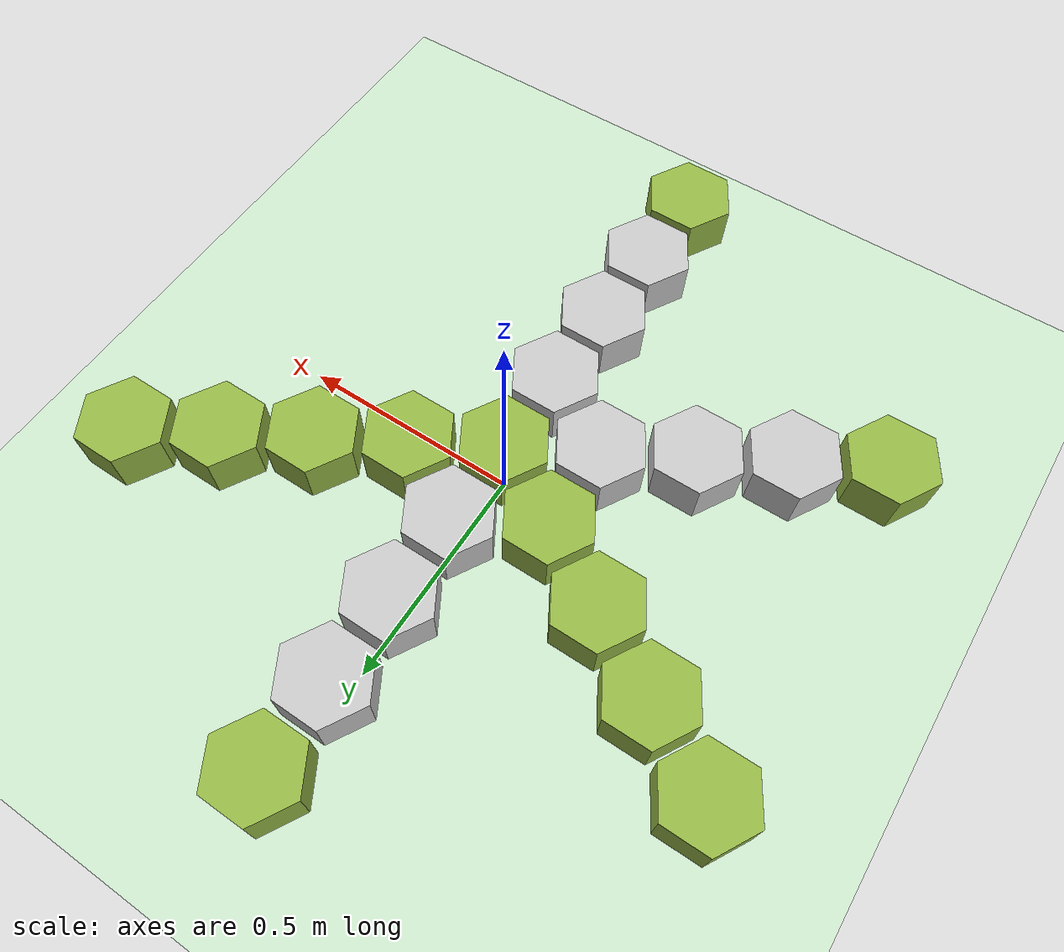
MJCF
<mujoco model="hinge_chain">
  <compiler eulerseq="zyx" meshdir="parts" texturedir="assets" autolimits="true"/>
  <option>
    <flag filterparent="disable"/>
  </option>
  <default>
    <joint range="-20 20"/>
  </default>
  <asset>
    <texture type="skybox" builtin="gradient" rgb1="0.3 0.5 0.7" rgb2="0 0 0" width="512" height="512"/>
    <texture name="texgeom" type="cube" builtin="flat" mark="cross" width="127" height="1278" rgb1="0.8 0.6 0.4" rgb2="0.8 0.6 0.4" markrgb="1 1 1" random="0.01"/>
    <texture name="texplane" type="2d" builtin="checker" rgb1=".2 .3 .4" rgb2=".1 0.15 0.2" width="512" height="512" mark="cross" markrgb=".8 .8 .8"/>
    <material name="matplane" reflectance="0.3" texture="texplane" texrepeat="1 1" texuniform="true"/>
    <material name="matgeom" texture="texgeom" texuniform="true" rgba="0.8 0.6 .4 1"/>
    <mesh file="hex-q.obj" name="hex" scale="1 1 1"/>
  </asset>
  <worldbody>
    <light cutoff="100" diffuse="1 1 1" dir="-0 0 -1.3" directional="true" exponent="1" pos="0 0 1.3" specular=".8 .8 .8"/>
    <light mode="targetbodycom" target="box0" pos="3 0 4" cutoff="100" diffuse="1 1 1" specular=".8 .8 .8"/>
    <geom name="floor" pos="0 0 0" rgba="0.8 0.9 0.8 1" size="40 40 40" type="plane" material="matplane" conaffinity="1" condim="6" friction="0.4 .0 .0" priority="10"/>
    <body name="box0" pos="0 0 0.1">
      <joint type="free"/>
      <geom name="box0" type="mesh" mesh="hex" rgba="0.5843137254901961 0.7176470588235294 0.27450980392156865 1" mass="1"/>
      <body name="box1" pos="0.16500000000000004 0.09526279441628827 0">
        <joint name="hinge1" type="hinge" axis="0 0 1" pos="-0.08250000000000002 -0.04763139720814413 0"/>
        <geom name="box1" type="mesh" mesh="hex" rgba="0.5843137254901961 0.7176470588235294 0.27450980392156865 1" mass="1"/>
        <body name="box2" pos="0.16500000000000004 0.09526279441628827 0">
          <joint name="hinge2" type="hinge" axis="0 0 1" pos="-0.08250000000000002 -0.04763139720814413 0"/>
          <geom name="box2" type="mesh" mesh="hex" rgba="0.5843137254901961 0.7176470588235294 0.27450980392156865 1" mass="1"/>
          <body name="box3" pos="0.16500000000000004 0.09526279441628827 0">
            <joint name="hinge3" type="hinge" axis="0 0 1" pos="-0.08250000000000002 -0.04763139720814413 0"/>
            <geom name="box3" type="mesh" mesh="hex" rgba="0.5843137254901961 0.7176470588235294 0.27450980392156865 1" mass="1"/>
            <body name="box4" pos="0.16500000000000004 0.09526279441628827 0">
              <joint name="hinge4" type="hinge" axis="0 0 1" pos="-0.08250000000000002 -0.04763139720814413 0"/>
              <geom name="box4" type="mesh" mesh="hex" rgba="0.5843137254901961 0.7176470588235294 0.27450980392156865 1" mass="1"/>
            </body>
          </body>
        </body>
      </body>
      <body name="box5" pos="0.0 0.19052558883257653 0">
        <joint name="hinge5" type="hinge" axis="0 0 1" pos="-0.0 -0.09526279441628827 0"/>
        <geom name="box5" type="mesh" mesh="hex" rgba="0.7803921568627451 0.7803921568627451 0.7803921568627451 1" mass="1"/>
        <body name="box6" pos="0.0 0.19052558883257653 0">
          <joint name="hinge6" type="hinge" axis="0 0 1" pos="-0.0 -0.09526279441628827 0"/>
          <geom name="box6" type="mesh" mesh="hex" rgba="0.7803921568627451 0.7803921568627451 0.7803921568627451 1" mass="1"/>
          <body name="box7" pos="0.0 0.19052558883257653 0">
            <joint name="hinge7" type="hinge" axis="0 0 1" pos="-0.0 -0.09526279441628827 0"/>
            <geom name="box7" type="mesh" mesh="hex" rgba="0.7803921568627451 0.7803921568627451 0.7803921568627451 1" mass="1"/>
            <body name="box8" pos="0.0 0.19052558883257653 0">
              <joint name="hinge8" type="hinge" axis="0 0 1" pos="-0.0 -0.09526279441628827 0"/>
              <geom name="box8" type="mesh" mesh="hex" rgba="0.5843137254901961 0.7176470588235294 0.27450980392156865 1" mass="1"/>
            </body>
          </body>
        </body>
      </body>
      <body name="box9" pos="-0.16500000000000004 0.09526279441628827 0">
        <joint name="hinge9" type="hinge" axis="0 0 1" pos="0.08250000000000002 -0.04763139720814413 0"/>
        <geom name="box9" type="mesh" mesh="hex" rgba="0.5843137254901961 0.7176470588235294 0.27450980392156865 1" mass="1"/>
        <body name="box10" pos="-0.16500000000000004 0.09526279441628827 0">
          <joint name="hinge10" type="hinge" axis="0 0 1" pos="0.08250000000000002 -0.04763139720814413 0"/>
          <geom name="box10" type="mesh" mesh="hex" rgba="0.5843137254901961 0.7176470588235294 0.27450980392156865 1" mass="1"/>
          <body name="box11" pos="-0.16500000000000004 0.09526279441628827 0">
            <joint name="hinge11" type="hinge" axis="0 0 1" pos="0.08250000000000002 -0.04763139720814413 0"/>
            <geom name="box11" type="mesh" mesh="hex" rgba="0.5843137254901961 0.7176470588235294 0.27450980392156865 1" mass="1"/>
            <body name="box12" pos="-0.16500000000000004 0.09526279441628827 0">
              <joint name="hinge12" type="hinge" axis="0 0 1" pos="0.08250000000000002 -0.04763139720814413 0"/>
              <geom name="box12" type="mesh" mesh="hex" rgba="0.5843137254901961 0.7176470588235294 0.27450980392156865 1" mass="1"/>
            </body>
          </body>
        </body>
      </body>
      <body name="box13" pos="-0.16500000000000004 -0.09526279441628827 0">
        <joint name="hinge13" type="hinge" axis="0 0 1" pos="0.08250000000000002 0.04763139720814413 0"/>
        <geom name="box13" type="mesh" mesh="hex" rgba="0.7803921568627451 0.7803921568627451 0.7803921568627451 1" mass="1"/>
        <body name="box14" pos="-0.16500000000000004 -0.09526279441628827 0">
          <joint name="hinge14" type="hinge" axis="0 0 1" pos="0.08250000000000002 0.04763139720814413 0"/>
          <geom name="box14" type="mesh" mesh="hex" rgba="0.7803921568627451 0.7803921568627451 0.7803921568627451 1" mass="1"/>
          <body name="box15" pos="-0.16500000000000004 -0.09526279441628827 0">
            <joint name="hinge15" type="hinge" axis="0 0 1" pos="0.08250000000000002 0.04763139720814413 0"/>
            <geom name="box15" type="mesh" mesh="hex" rgba="0.7803921568627451 0.7803921568627451 0.7803921568627451 1" mass="1"/>
            <body name="box16" pos="-0.16500000000000004 -0.09526279441628827 0">
              <joint name="hinge16" type="hinge" axis="0 0 1" pos="0.08250000000000002 0.04763139720814413 0"/>
              <geom name="box16" type="mesh" mesh="hex" rgba="0.5843137254901961 0.7176470588235294 0.27450980392156865 1" mass="1"/>
            </body>
          </body>
        </body>
      </body>
      <body name="box17" pos="0.0 -0.19052558883257653 0">
        <joint name="hinge17" type="hinge" axis="0 0 1" pos="-0.0 0.09526279441628827 0"/>
        <geom name="box17" type="mesh" mesh="hex" rgba="0.7803921568627451 0.7803921568627451 0.7803921568627451 1" mass="1"/>
        <body name="box18" pos="0.0 -0.19052558883257653 0">
          <joint name="hinge18" type="hinge" axis="0 0 1" pos="-0.0 0.09526279441628827 0"/>
          <geom name="box18" type="mesh" mesh="hex" rgba="0.7803921568627451 0.7803921568627451 0.7803921568627451 1" mass="1"/>
          <body name="box19" pos="0.0 -0.19052558883257653 0">
            <joint name="hinge19" type="hinge" axis="0 0 1" pos="-0.0 0.09526279441628827 0"/>
            <geom name="box19" type="mesh" mesh="hex" rgba="0.7803921568627451 0.7803921568627451 0.7803921568627451 1" mass="1"/>
            <body name="box20" pos="0.0 -0.19052558883257653 0">
              <joint name="hinge20" type="hinge" axis="0 0 1" pos="-0.0 0.09526279441628827 0"/>
              <geom name="box20" type="mesh" mesh="hex" rgba="0.5843137254901961 0.7176470588235294 0.27450980392156865 1" mass="1"/>
            </body>
          </body>
        </body>
      </body>
    </body>
  </worldbody>
</mujoco>
